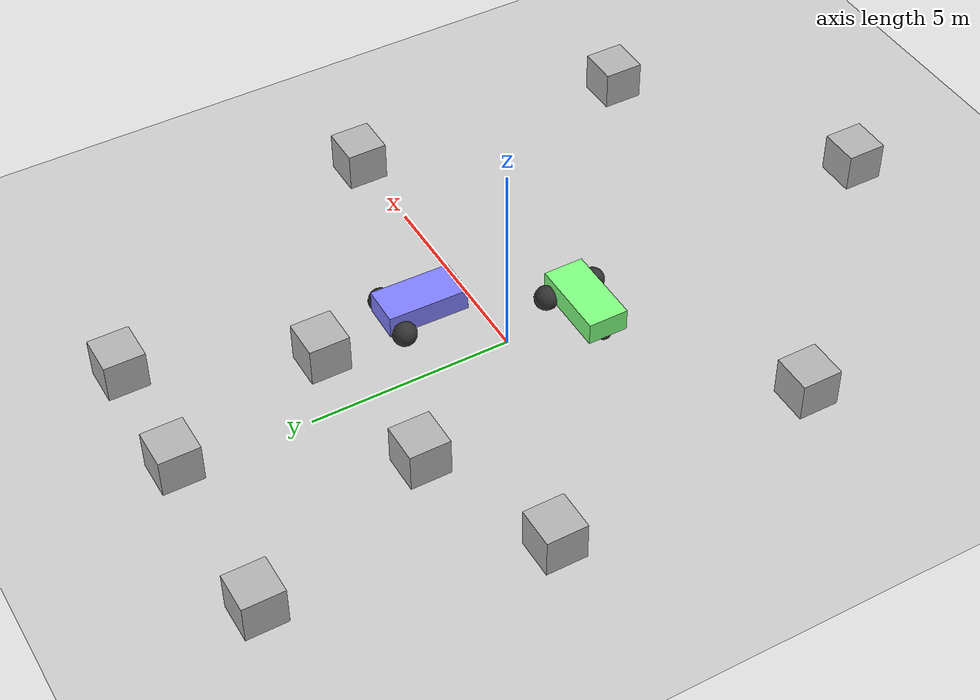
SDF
<sdf version='1.10'>
  <world name='diff_drive'>
    <physics name='1ms' type='ignored'>
      <max_step_size>0.001</max_step_size>
      <real_time_factor>1</real_time_factor>
      <real_time_update_rate>1000</real_time_update_rate>
    </physics>
    <plugin name='gz::sim::systems::Physics' filename='gz-sim-physics-system'/>
    <plugin name='gz::sim::systems::UserCommands' filename='gz-sim-user-commands-system'/>
    <plugin name='gz::sim::systems::SceneBroadcaster' filename='gz-sim-scene-broadcaster-system'/>
    <gravity>0 0 -9.8000000000000007</gravity>
    <magnetic_field>5.5644999999999998e-06 2.2875799999999999e-05 -4.2388400000000002e-05</magnetic_field>
    <atmosphere type='adiabatic'/>
    <scene>
      <ambient>0.400000006 0.400000006 0.400000006 1</ambient>
      <background>0.699999988 0.699999988 0.699999988 1</background>
      <shadows>true</shadows>
    </scene>
    <model name='ground_plane'>
      <static>true</static>
      <link name='link'>
        <collision name='collision'>
          <geometry>
            <plane>
              <normal>0 0 1</normal>
              <size>100 100</size>
            </plane>
          </geometry>
          <surface>
            <friction>
              <ode/>
            </friction>
            <bounce/>
            <contact/>
          </surface>
        </collision>
        <visual name='visual'>
          <geometry>
            <plane>
              <normal>0 0 1</normal>
              <size>100 100</size>
            </plane>
          </geometry>
          <material>
            <ambient>0.800000012 0.800000012 0.800000012 1</ambient>
            <diffuse>0.800000012 0.800000012 0.800000012 1</diffuse>
            <specular>0.800000012 0.800000012 0.800000012 1</specular>
          </material>
        </visual>
        <pose>0 0 0 0 0 0</pose>
        <inertial>
          <pose>0 0 0 0 0 0</pose>
          <mass>1</mass>
          <inertia>
            <ixx>1</ixx>
            <ixy>0</ixy>
            <ixz>0</ixz>
            <iyy>1</iyy>
            <iyz>0</iyz>
            <izz>1</izz>
          </inertia>
        </inertial>
        <enable_wind>false</enable_wind>
      </link>
      <pose>0 0 0 0 0 0</pose>
      <self_collide>false</self_collide>
    </model>
    <model name='vehicle_blue'>
      <pose>1.7722698302164603 1.4769524547846198 0.32499999029813748 1.5426719286254476e-13 -6.69922472017145e-10 1.5494971408837024</pose>
      <link name='chassis'>
        <pose>-0.15142700000000001 0 0.17499999999999999 0 0 0</pose>
        <inertial>
          <mass>1.14395</mass>
          <inertia>
            <ixx>0.126164</ixx>
            <ixy>0</ixy>
            <ixz>0</ixz>
            <iyy>0.41651899999999997</iyy>
            <iyz>0</iyz>
            <izz>0.481014</izz>
          </inertia>
          <pose>0 0 0 0 0 0</pose>
        </inertial>
        <visual name='visual'>
          <geometry>
            <box>
              <size>2.0114200000000002 1 0.56872599999999995</size>
            </box>
          </geometry>
          <material>
            <ambient>0.5 0.5 1 1</ambient>
            <diffuse>0.5 0.5 1 1</diffuse>
            <specular>0 0 1 1</specular>
          </material>
        </visual>
        <collision name='collision'>
          <geometry>
            <box>
              <size>2.0114200000000002 1 0.56872599999999995</size>
            </box>
          </geometry>
          <surface>
            <friction>
              <ode/>
            </friction>
            <bounce/>
            <contact/>
          </surface>
        </collision>
        <enable_wind>false</enable_wind>
      </link>
      <link name='left_wheel'>
        <pose>0.55428300000000008 0.62502899999999983 -0.025000000000000022 -1.570657653657455 -0.80288815211796449 -9.9756642202515787e-05</pose>
        <inertial>
          <mass>2</mass>
          <inertia>
            <ixx>0.14583299999999999</ixx>
            <ixy>0</ixy>
            <ixz>0</ixz>
            <iyy>0.14583299999999999</iyy>
            <iyz>0</iyz>
            <izz>0.125</izz>
          </inertia>
          <pose>0 0 0 0 0 0</pose>
        </inertial>
        <visual name='visual'>
          <geometry>
            <sphere>
              <radius>0.29999999999999999</radius>
            </sphere>
          </geometry>
          <material>
            <ambient>0.200000003 0.200000003 0.200000003 1</ambient>
            <diffuse>0.200000003 0.200000003 0.200000003 1</diffuse>
            <specular>0.200000003 0.200000003 0.200000003 1</specular>
          </material>
        </visual>
        <collision name='collision'>
          <geometry>
            <sphere>
              <radius>0.29999999999999999</radius>
            </sphere>
          </geometry>
          <surface>
            <friction>
              <ode>
                <mu>1</mu>
                <mu2>1</mu2>
                <slip1>0.035000000000000003</slip1>
                <slip2>0</slip2>
                <fdir1>0 0 1</fdir1>
              </ode>
              <bullet>
                <friction>1</friction>
                <friction2>1</friction2>
                <rolling_friction>0.10000000000000001</rolling_friction>
              </bullet>
            </friction>
            <bounce/>
            <contact/>
          </surface>
        </collision>
        <enable_wind>false</enable_wind>
      </link>
      <link name='right_wheel'>
        <pose>0.5542819999999995 -0.62502900000000028 -0.025000000000000133 1.5706774697098271 0.62588980052641507 3.1415230248940484</pose>
        <inertial>
          <mass>2</mass>
          <inertia>
            <ixx>0.14583299999999999</ixx>
            <ixy>0</ixy>
            <ixz>0</ixz>
            <iyy>0.14583299999999999</iyy>
            <iyz>0</iyz>
            <izz>0.125</izz>
          </inertia>
          <pose>0 0 0 0 0 0</pose>
        </inertial>
        <visual name='visual'>
          <geometry>
            <sphere>
              <radius>0.29999999999999999</radius>
            </sphere>
          </geometry>
          <material>
            <ambient>0.200000003 0.200000003 0.200000003 1</ambient>
            <diffuse>0.200000003 0.200000003 0.200000003 1</diffuse>
            <specular>0.200000003 0.200000003 0.200000003 1</specular>
          </material>
        </visual>
        <collision name='collision'>
          <geometry>
            <sphere>
              <radius>0.29999999999999999</radius>
            </sphere>
          </geometry>
          <surface>
            <friction>
              <ode>
                <mu>1</mu>
                <mu2>1</mu2>
                <slip1>0.035000000000000003</slip1>
                <slip2>0</slip2>
                <fdir1>0 0 1</fdir1>
              </ode>
              <bullet>
                <friction>1</friction>
                <friction2>1</friction2>
                <rolling_friction>0.10000000000000001</rolling_friction>
              </bullet>
            </friction>
            <bounce/>
            <contact/>
          </surface>
        </collision>
        <enable_wind>false</enable_wind>
      </link>
      <link name='caster'>
        <pose>-0.95713800000000093 -1.1844530622973082e-07 -0.12499999999999828 -1.5297329753360118 0.10249081017394765 0.44657218419418448</pose>
        <inertial>
          <mass>1</mass>
          <inertia>
            <ixx>0.10000000000000001</ixx>
            <ixy>0</ixy>
            <ixz>0</ixz>
            <iyy>0.10000000000000001</iyy>
            <iyz>0</iyz>
            <izz>0.10000000000000001</izz>
          </inertia>
          <pose>0 0 0 0 0 0</pose>
        </inertial>
        <visual name='visual'>
          <geometry>
            <sphere>
              <radius>0.20000000000000001</radius>
            </sphere>
          </geometry>
          <material>
            <ambient>0.200000003 0.200000003 0.200000003 1</ambient>
            <diffuse>0.200000003 0.200000003 0.200000003 1</diffuse>
            <specular>0.200000003 0.200000003 0.200000003 1</specular>
          </material>
        </visual>
        <collision name='collision'>
          <geometry>
            <sphere>
              <radius>0.20000000000000001</radius>
            </sphere>
          </geometry>
          <surface>
            <friction>
              <ode/>
            </friction>
            <bounce/>
            <contact/>
          </surface>
        </collision>
        <enable_wind>false</enable_wind>
      </link>
      <joint name='left_wheel_joint' type='revolute'>
        <parent>chassis</parent>
        <child>left_wheel</child>
        <axis>
          <xyz>0 0 1</xyz>
          <limit>
            <lower>-1.7976900000000001e+308</lower>
            <upper>1.7976900000000001e+308</upper>
            <effort>inf</effort>
            <velocity>inf</velocity>
            <stiffness>100000000</stiffness>
            <dissipation>1</dissipation>
          </limit>
          <dynamics>
            <spring_reference>0</spring_reference>
            <spring_stiffness>0</spring_stiffness>
            <damping>0</damping>
            <friction>0</friction>
          </dynamics>
        </axis>
        <pose>0 0 1.1102230246251565e-16 0 0 0</pose>
      </joint>
      <joint name='right_wheel_joint' type='revolute'>
        <parent>chassis</parent>
        <child>right_wheel</child>
        <axis>
          <xyz>0 0 1</xyz>
          <limit>
            <lower>-1.7976900000000001e+308</lower>
            <upper>1.7976900000000001e+308</upper>
            <effort>inf</effort>
            <velocity>inf</velocity>
            <stiffness>100000000</stiffness>
            <dissipation>1</dissipation>
          </limit>
          <dynamics>
            <spring_reference>0</spring_reference>
            <spring_stiffness>0</spring_stiffness>
            <damping>0</damping>
            <friction>0</friction>
          </dynamics>
        </axis>
        <pose>-1.1102230246251565e-16 0 0 0 0 0</pose>
      </joint>
      <joint name='caster_wheel' type='ball'>
        <parent>chassis</parent>
        <child>caster</child>
        <pose>0 0 0 0 0 0</pose>
      </joint>
      <plugin name='gz::sim::systems::DiffDrive' filename='gz-sim-diff-drive-system'>
        <left_joint>left_wheel_joint</left_joint>
        <right_joint>right_wheel_joint</right_joint>
        <wheel_separation>1.25</wheel_separation>
        <wheel_radius>0.3</wheel_radius>
        <odom_publish_frequency>1</odom_publish_frequency>
        <max_linear_acceleration>1</max_linear_acceleration>
        <min_linear_acceleration>-1</min_linear_acceleration>
        <max_angular_acceleration>2</max_angular_acceleration>
        <min_angular_acceleration>-2</min_angular_acceleration>
        <max_linear_velocity>0.5</max_linear_velocity>
        <min_linear_velocity>-0.5</min_linear_velocity>
        <max_angular_velocity>1</max_angular_velocity>
        <min_angular_velocity>-1</min_angular_velocity>
      </plugin>
      <static>false</static>
      <self_collide>false</self_collide>
    </model>
    <model name='vehicle_green'>
      <pose>-3.5534353204358382e-07 -1.9999999999996028 0.32499938652317373 -8.7532266116650304e-13 -1.0933334433716442e-06 -7.5609745047090164e-19</pose>
      <link name='chassis'>
        <pose>-0.15142700000000001 0 0.17499999999999999 0 0 0</pose>
        <inertial>
          <mass>1.14395</mass>
          <inertia>
            <ixx>0.126164</ixx>
            <ixy>0</ixy>
            <ixz>0</ixz>
            <iyy>0.41651899999999997</iyy>
            <iyz>0</iyz>
            <izz>0.481014</izz>
          </inertia>
          <pose>0 0 0 0 0 0</pose>
        </inertial>
        <visual name='visual'>
          <geometry>
            <box>
              <size>2.0114200000000002 1 0.56872599999999995</size>
            </box>
          </geometry>
          <material>
            <ambient>0.5 1 0.5 1</ambient>
            <diffuse>0.5 1 0.5 1</diffuse>
            <specular>0 1 0 1</specular>
          </material>
        </visual>
        <collision name='collision'>
          <geometry>
            <box>
              <size>2.0114200000000002 1 0.56872599999999995</size>
            </box>
          </geometry>
          <surface>
            <friction>
              <ode/>
            </friction>
            <bounce/>
            <contact/>
          </surface>
        </collision>
        <enable_wind>false</enable_wind>
      </link>
      <link name='left_wheel'>
        <pose>0.55428299999999986 0.62502899999999983 -0.025000000000000078 -1.5706999999999995 -4.5954870322133154e-17 -4.4228839943423966e-21</pose>
        <inertial>
          <mass>2</mass>
          <inertia>
            <ixx>0.14583299999999999</ixx>
            <ixy>0</ixy>
            <ixz>0</ixz>
            <iyy>0.14583299999999999</iyy>
            <iyz>0</iyz>
            <izz>0.125</izz>
          </inertia>
          <pose>0 0 0 0 0 0</pose>
        </inertial>
        <visual name='visual'>
          <geometry>
            <sphere>
              <radius>0.29999999999999999</radius>
            </sphere>
          </geometry>
          <material>
            <ambient>0.200000003 0.200000003 0.200000003 1</ambient>
            <diffuse>0.200000003 0.200000003 0.200000003 1</diffuse>
            <specular>0.200000003 0.200000003 0.200000003 1</specular>
          </material>
        </visual>
        <collision name='collision'>
          <geometry>
            <sphere>
              <radius>0.29999999999999999</radius>
            </sphere>
          </geometry>
          <surface>
            <friction>
              <ode>
                <mu>1</mu>
                <mu2>1</mu2>
                <slip1>0.035000000000000003</slip1>
                <slip2>0</slip2>
                <fdir1>0 0 1</fdir1>
              </ode>
              <bullet>
                <friction>1</friction>
                <friction2>1</friction2>
                <rolling_friction>0.10000000000000001</rolling_friction>
              </bullet>
            </friction>
            <bounce/>
            <contact/>
          </surface>
        </collision>
        <enable_wind>false</enable_wind>
      </link>
      <link name='right_wheel'>
        <pose>0.55428199999999994 -0.6250290000000005 -0.025000000000000078 -1.5706999999999995 -4.5985341530434804e-17 -4.4992194339520349e-21</pose>
        <inertial>
          <mass>2</mass>
          <inertia>
            <ixx>0.14583299999999999</ixx>
            <ixy>0</ixy>
            <ixz>0</ixz>
            <iyy>0.14583299999999999</iyy>
            <iyz>0</iyz>
            <izz>0.125</izz>
          </inertia>
          <pose>0 0 0 0 0 0</pose>
        </inertial>
        <visual name='visual'>
          <geometry>
            <sphere>
              <radius>0.29999999999999999</radius>
            </sphere>
          </geometry>
          <material>
            <ambient>0.200000003 0.200000003 0.200000003 1</ambient>
            <diffuse>0.200000003 0.200000003 0.200000003 1</diffuse>
            <specular>0.200000003 0.200000003 0.200000003 1</specular>
          </material>
        </visual>
        <collision name='collision'>
          <geometry>
            <sphere>
              <radius>0.29999999999999999</radius>
            </sphere>
          </geometry>
          <surface>
            <friction>
              <ode>
                <mu>1</mu>
                <mu2>1</mu2>
                <slip1>0.035000000000000003</slip1>
                <slip2>0</slip2>
                <fdir1>0 0 1</fdir1>
              </ode>
              <bullet>
                <friction>1</friction>
                <friction2>1</friction2>
                <rolling_friction>0.10000000000000001</rolling_friction>
              </bullet>
            </friction>
            <bounce/>
            <contact/>
          </surface>
        </collision>
        <enable_wind>false</enable_wind>
      </link>
      <link name='caster'>
        <pose>-0.95713790224647233 7.1054273576010019e-15 -0.1249992621046398 -3.1515695061907738e-12 5.8903080736177573e-06 -1.4377452488366366e-18</pose>
        <inertial>
          <mass>1</mass>
          <inertia>
            <ixx>0.10000000000000001</ixx>
            <ixy>0</ixy>
            <ixz>0</ixz>
            <iyy>0.10000000000000001</iyy>
            <iyz>0</iyz>
            <izz>0.10000000000000001</izz>
          </inertia>
          <pose>0 0 0 0 0 0</pose>
        </inertial>
        <visual name='visual'>
          <geometry>
            <sphere>
              <radius>0.20000000000000001</radius>
            </sphere>
          </geometry>
          <material>
            <ambient>0.200000003 0.200000003 0.200000003 1</ambient>
            <diffuse>0.200000003 0.200000003 0.200000003 1</diffuse>
            <specular>0.200000003 0.200000003 0.200000003 1</specular>
          </material>
        </visual>
        <collision name='collision'>
          <geometry>
            <sphere>
              <radius>0.20000000000000001</radius>
            </sphere>
          </geometry>
          <surface>
            <friction>
              <ode/>
            </friction>
            <bounce/>
            <contact/>
          </surface>
        </collision>
        <enable_wind>false</enable_wind>
      </link>
      <joint name='left_wheel_joint' type='revolute'>
        <parent>chassis</parent>
        <child>left_wheel</child>
        <axis>
          <xyz>0 0 1</xyz>
          <limit>
            <lower>-1.7976900000000001e+308</lower>
            <upper>1.7976900000000001e+308</upper>
            <effort>inf</effort>
            <velocity>inf</velocity>
            <stiffness>100000000</stiffness>
            <dissipation>1</dissipation>
          </limit>
          <dynamics>
            <spring_reference>0</spring_reference>
            <spring_stiffness>0</spring_stiffness>
            <damping>0</damping>
            <friction>0</friction>
          </dynamics>
        </axis>
        <pose>0 0 1.1102230246251565e-16 0 0 0</pose>
      </joint>
      <joint name='right_wheel_joint' type='revolute'>
        <parent>chassis</parent>
        <child>right_wheel</child>
        <axis>
          <xyz>0 0 1</xyz>
          <limit>
            <lower>-1.7976900000000001e+308</lower>
            <upper>1.7976900000000001e+308</upper>
            <effort>inf</effort>
            <velocity>inf</velocity>
            <stiffness>100000000</stiffness>
            <dissipation>1</dissipation>
          </limit>
          <dynamics>
            <spring_reference>0</spring_reference>
            <spring_stiffness>0</spring_stiffness>
            <damping>0</damping>
            <friction>0</friction>
          </dynamics>
        </axis>
        <pose>-1.1102230246251565e-16 0 0 0 0 0</pose>
      </joint>
      <joint name='caster_wheel' type='ball'>
        <parent>chassis</parent>
        <child>caster</child>
        <pose>0 0 0 0 0 0</pose>
      </joint>
      <plugin name='gz::sim::systems::DiffDrive' filename='gz-sim-diff-drive-system'>
        <left_joint>left_wheel_joint</left_joint>
        <right_joint>right_wheel_joint</right_joint>
        <wheel_separation>1.25</wheel_separation>
        <wheel_radius>0.3</wheel_radius>
        <max_linear_acceleration>1</max_linear_acceleration>
        <min_linear_acceleration>-1</min_linear_acceleration>
        <max_angular_acceleration>2</max_angular_acceleration>
        <min_angular_acceleration>-2</min_angular_acceleration>
        <max_linear_velocity>0.5</max_linear_velocity>
        <min_linear_velocity>-0.5</min_linear_velocity>
        <max_angular_velocity>1</max_angular_velocity>
        <min_angular_velocity>-1</min_angular_velocity>
      </plugin>
      <static>false</static>
      <self_collide>false</self_collide>
    </model>
    <model name='box'>
      <pose>-4.1758168195175411 8.2647675431992358 0.49999999990199806 6.2287739151293738e-22 9.3279666454713669e-22 -3.6315533669320137e-22</pose>
      <link name='box_link'>
        <inertial>
          <inertia>
            <ixx>0.16666</ixx>
            <ixy>0</ixy>
            <ixz>0</ixz>
            <iyy>0.16666</iyy>
            <iyz>0</iyz>
            <izz>0.16666</izz>
          </inertia>
          <mass>1</mass>
          <pose>0 0 0 0 0 0</pose>
        </inertial>
        <collision name='box_collision'>
          <geometry>
            <box>
              <size>1 1 1</size>
            </box>
          </geometry>
          <surface>
            <friction>
              <ode/>
            </friction>
            <bounce/>
            <contact/>
          </surface>
        </collision>
        <visual name='box_visual'>
          <geometry>
            <box>
              <size>1 1 1</size>
            </box>
          </geometry>
          <material>
            <ambient>0.300000012 0.300000012 0.300000012 1</ambient>
            <diffuse>0.699999988 0.699999988 0.699999988 1</diffuse>
            <specular>1 1 1 1</specular>
          </material>
        </visual>
        <pose>0 0 0 0 0 0</pose>
        <enable_wind>false</enable_wind>
      </link>
      <static>false</static>
      <self_collide>false</self_collide>
    </model>
    <model name='box_1'>
      <pose>0.18026061994079257 8.1932251760993697 0.49999999990199806 6.2287739151293738e-22 9.3279666454713669e-22 -3.6315533669320137e-22</pose>
      <link name='box_link'>
        <inertial>
          <inertia>
            <ixx>0.16666</ixx>
            <ixy>0</ixy>
            <ixz>0</ixz>
            <iyy>0.16666</iyy>
            <iyz>0</iyz>
            <izz>0.16666</izz>
          </inertia>
          <mass>1</mass>
          <pose>0 0 0 0 0 0</pose>
        </inertial>
        <collision name='box_collision'>
          <geometry>
            <box>
              <size>1 1 1</size>
            </box>
          </geometry>
          <surface>
            <friction>
              <ode/>
            </friction>
            <bounce/>
            <contact/>
          </surface>
        </collision>
        <visual name='box_visual'>
          <geometry>
            <box>
              <size>1 1 1</size>
            </box>
          </geometry>
          <material>
            <ambient>0.300000012 0.300000012 0.300000012 1</ambient>
            <diffuse>0.699999988 0.699999988 0.699999988 1</diffuse>
            <specular>1 1 1 1</specular>
          </material>
        </visual>
        <pose>0 0 0 0 0 0</pose>
        <enable_wind>false</enable_wind>
      </link>
      <static>false</static>
      <self_collide>false</self_collide>
    </model>
    <model name='box_2'>
      <pose>3.3462139976285137 8.1419589953972213 0.49999999990199806 6.2287739151293738e-22 9.3279666454713669e-22 -3.6315533669320137e-22</pose>
      <link name='box_link'>
        <inertial>
          <inertia>
            <ixx>0.16666</ixx>
            <ixy>0</ixy>
            <ixz>0</ixz>
            <iyy>0.16666</iyy>
            <iyz>0</iyz>
            <izz>0.16666</izz>
          </inertia>
          <mass>1</mass>
          <pose>0 0 0 0 0 0</pose>
        </inertial>
        <collision name='box_collision'>
          <geometry>
            <box>
              <size>1 1 1</size>
            </box>
          </geometry>
          <surface>
            <friction>
              <ode/>
            </friction>
            <bounce/>
            <contact/>
          </surface>
        </collision>
        <visual name='box_visual'>
          <geometry>
            <box>
              <size>1 1 1</size>
            </box>
          </geometry>
          <material>
            <ambient>0.300000012 0.300000012 0.300000012 1</ambient>
            <diffuse>0.699999988 0.699999988 0.699999988 1</diffuse>
            <specular>1 1 1 1</specular>
          </material>
        </visual>
        <pose>0 0 0 0 0 0</pose>
        <enable_wind>false</enable_wind>
      </link>
      <static>false</static>
      <self_collide>false</self_collide>
    </model>
    <model name='box_3'>
      <pose>1.5382575178131042 3.9768912063110102 0.49999999990199806 6.2287739151293738e-22 9.3279666454713669e-22 -3.6315533669320137e-22</pose>
      <link name='box_link'>
        <inertial>
          <inertia>
            <ixx>0.16666</ixx>
            <ixy>0</ixy>
            <ixz>0</ixz>
            <iyy>0.16666</iyy>
            <iyz>0</iyz>
            <izz>0.16666</izz>
          </inertia>
          <mass>1</mass>
          <pose>0 0 0 0 0 0</pose>
        </inertial>
        <collision name='box_collision'>
          <geometry>
            <box>
              <size>1 1 1</size>
            </box>
          </geometry>
          <surface>
            <friction>
              <ode/>
            </friction>
            <bounce/>
            <contact/>
          </surface>
        </collision>
        <visual name='box_visual'>
          <geometry>
            <box>
              <size>1 1 1</size>
            </box>
          </geometry>
          <material>
            <ambient>0.300000012 0.300000012 0.300000012 1</ambient>
            <diffuse>0.699999988 0.699999988 0.699999988 1</diffuse>
            <specular>1 1 1 1</specular>
          </material>
        </visual>
        <pose>0 0 0 0 0 0</pose>
        <enable_wind>false</enable_wind>
      </link>
      <static>false</static>
      <self_collide>false</self_collide>
    </model>
    <model name='box_4'>
      <pose>-2.3188185700791291 3.5031947146506388 0.49999999990199806 6.2287739151293738e-22 9.3279666454713669e-22 -3.6315533669320137e-22</pose>
      <link name='box_link'>
        <inertial>
          <inertia>
            <ixx>0.16666</ixx>
            <ixy>0</ixy>
            <ixz>0</ixz>
            <iyy>0.16666</iyy>
            <iyz>0</iyz>
            <izz>0.16666</izz>
          </inertia>
          <mass>1</mass>
          <pose>0 0 0 0 0 0</pose>
        </inertial>
        <collision name='box_collision'>
          <geometry>
            <box>
              <size>1 1 1</size>
            </box>
          </geometry>
          <surface>
            <friction>
              <ode/>
            </friction>
            <bounce/>
            <contact/>
          </surface>
        </collision>
        <visual name='box_visual'>
          <geometry>
            <box>
              <size>1 1 1</size>
            </box>
          </geometry>
          <material>
            <ambient>0.300000012 0.300000012 0.300000012 1</ambient>
            <diffuse>0.699999988 0.699999988 0.699999988 1</diffuse>
            <specular>1 1 1 1</specular>
          </material>
        </visual>
        <pose>0 0 0 0 0 0</pose>
        <enable_wind>false</enable_wind>
      </link>
      <static>false</static>
      <self_collide>false</self_collide>
    </model>
    <model name='box_0'>
      <pose>-5.7600123760511064 2.1702378189711293 0.49999999990199806 6.2287739151293738e-22 9.3279666454713669e-22 -3.6315533669320137e-22</pose>
      <link name='box_link'>
        <inertial>
          <inertia>
            <ixx>0.16666</ixx>
            <ixy>0</ixy>
            <ixz>0</ixz>
            <iyy>0.16666</iyy>
            <iyz>0</iyz>
            <izz>0.16666</izz>
          </inertia>
          <mass>1</mass>
          <pose>0 0 0 0 0 0</pose>
        </inertial>
        <collision name='box_collision'>
          <geometry>
            <box>
              <size>1 1 1</size>
            </box>
          </geometry>
          <surface>
            <friction>
              <ode/>
            </friction>
            <bounce/>
            <contact/>
          </surface>
        </collision>
        <visual name='box_visual'>
          <geometry>
            <box>
              <size>1 1 1</size>
            </box>
          </geometry>
          <material>
            <ambient>0.300000012 0.300000012 0.300000012 1</ambient>
            <diffuse>0.699999988 0.699999988 0.699999988 1</diffuse>
            <specular>1 1 1 1</specular>
          </material>
        </visual>
        <pose>0 0 0 0 0 0</pose>
        <enable_wind>false</enable_wind>
      </link>
      <static>false</static>
      <self_collide>false</self_collide>
    </model>
    <model name='box_5'>
      <pose>7.0880635517940149 0.19122618232618116 0.49999999990199806 6.2287739151293738e-22 9.3279666454713669e-22 -3.6315533669320137e-22</pose>
      <link name='box_link'>
        <inertial>
          <inertia>
            <ixx>0.16666</ixx>
            <ixy>0</ixy>
            <ixz>0</ixz>
            <iyy>0.16666</iyy>
            <iyz>0</iyz>
            <izz>0.16666</izz>
          </inertia>
          <mass>1</mass>
          <pose>0 0 0 0 0 0</pose>
        </inertial>
        <collision name='box_collision'>
          <geometry>
            <box>
              <size>1 1 1</size>
            </box>
          </geometry>
          <surface>
            <friction>
              <ode/>
            </friction>
            <bounce/>
            <contact/>
          </surface>
        </collision>
        <visual name='box_visual'>
          <geometry>
            <box>
              <size>1 1 1</size>
            </box>
          </geometry>
          <material>
            <ambient>0.300000012 0.300000012 0.300000012 1</ambient>
            <diffuse>0.699999988 0.699999988 0.699999988 1</diffuse>
            <specular>1 1 1 1</specular>
          </material>
        </visual>
        <pose>0 0 0 0 0 0</pose>
        <enable_wind>false</enable_wind>
      </link>
      <static>false</static>
      <self_collide>false</self_collide>
    </model>
    <model name='box_6'>
      <pose>6.670822293970474 -7.0312546399280169 0.49999999990199806 6.2287739151293738e-22 9.3279666454713669e-22 -3.6315533669320137e-22</pose>
      <link name='box_link'>
        <inertial>
          <inertia>
            <ixx>0.16666</ixx>
            <ixy>0</ixy>
            <ixz>0</ixz>
            <iyy>0.16666</iyy>
            <iyz>0</iyz>
            <izz>0.16666</izz>
          </inertia>
          <mass>1</mass>
          <pose>0 0 0 0 0 0</pose>
        </inertial>
        <collision name='box_collision'>
          <geometry>
            <box>
              <size>1 1 1</size>
            </box>
          </geometry>
          <surface>
            <friction>
              <ode/>
            </friction>
            <bounce/>
            <contact/>
          </surface>
        </collision>
        <visual name='box_visual'>
          <geometry>
            <box>
              <size>1 1 1</size>
            </box>
          </geometry>
          <material>
            <ambient>0.300000012 0.300000012 0.300000012 1</ambient>
            <diffuse>0.699999988 0.699999988 0.699999988 1</diffuse>
            <specular>1 1 1 1</specular>
          </material>
        </visual>
        <pose>0 0 0 0 0 0</pose>
        <enable_wind>false</enable_wind>
      </link>
      <static>false</static>
      <self_collide>false</self_collide>
    </model>
    <model name='box_7'>
      <pose>0.92956303064660872 -10.49115902810855 0.49999999990199806 6.2287739151293738e-22 9.3279666454713669e-22 -3.6315533669320137e-22</pose>
      <link name='box_link'>
        <inertial>
          <inertia>
            <ixx>0.16666</ixx>
            <ixy>0</ixy>
            <ixz>0</ixz>
            <iyy>0.16666</iyy>
            <iyz>0</iyz>
            <izz>0.16666</izz>
          </inertia>
          <mass>1</mass>
          <pose>0 0 0 0 0 0</pose>
        </inertial>
        <collision name='box_collision'>
          <geometry>
            <box>
              <size>1 1 1</size>
            </box>
          </geometry>
          <surface>
            <friction>
              <ode/>
            </friction>
            <bounce/>
            <contact/>
          </surface>
        </collision>
        <visual name='box_visual'>
          <geometry>
            <box>
              <size>1 1 1</size>
            </box>
          </geometry>
          <material>
            <ambient>0.300000012 0.300000012 0.300000012 1</ambient>
            <diffuse>0.699999988 0.699999988 0.699999988 1</diffuse>
            <specular>1 1 1 1</specular>
          </material>
        </visual>
        <pose>0 0 0 0 0 0</pose>
        <enable_wind>false</enable_wind>
      </link>
      <static>false</static>
      <self_collide>false</self_collide>
    </model>
    <model name='box_8'>
      <pose>-4.812541754932897 -4.9422771883532093 0.49999999990199806 6.2287739151293738e-22 9.3279666454713669e-22 -3.6315533669320137e-22</pose>
      <link name='box_link'>
        <inertial>
          <inertia>
            <ixx>0.16666</ixx>
            <ixy>0</ixy>
            <ixz>0</ixz>
            <iyy>0.16666</iyy>
            <iyz>0</iyz>
            <izz>0.16666</izz>
          </inertia>
          <mass>1</mass>
          <pose>0 0 0 0 0 0</pose>
        </inertial>
        <collision name='box_collision'>
          <geometry>
            <box>
              <size>1 1 1</size>
            </box>
          </geometry>
          <surface>
            <friction>
              <ode/>
            </friction>
            <bounce/>
            <contact/>
          </surface>
        </collision>
        <visual name='box_visual'>
          <geometry>
            <box>
              <size>1 1 1</size>
            </box>
          </geometry>
          <material>
            <ambient>0.300000012 0.300000012 0.300000012 1</ambient>
            <diffuse>0.699999988 0.699999988 0.699999988 1</diffuse>
            <specular>1 1 1 1</specular>
          </material>
        </visual>
        <pose>0 0 0 0 0 0</pose>
        <enable_wind>false</enable_wind>
      </link>
      <static>false</static>
      <self_collide>false</self_collide>
    </model>
    <light name='sun' type='directional'>
      <pose>0 0 10 0 0 0</pose>
      <cast_shadows>true</cast_shadows>
      <intensity>1</intensity>
      <direction>-0.5 0.10000000000000001 -0.90000000000000002</direction>
      <diffuse>1 1 1 1</diffuse>
      <specular>0.5 0.5 0.5 1</specular>
      <attenuation>
        <range>1000</range>
        <linear>0.01</linear>
        <constant>0.90000000000000002</constant>
        <quadratic>0.001</quadratic>
      </attenuation>
      <spot>
        <inner_angle>0</inner_angle>
        <outer_angle>0</outer_angle>
        <falloff>0</falloff>
      </spot>
    </light>
  </world>
</sdf>
